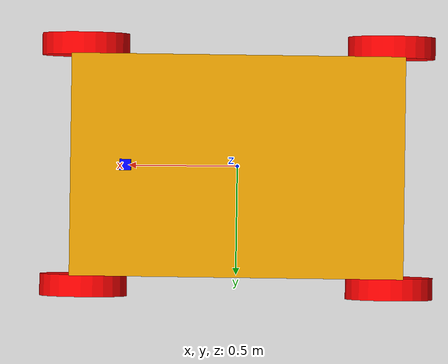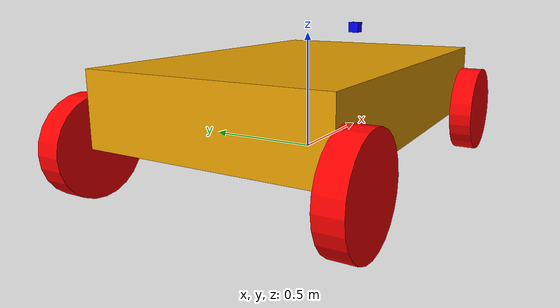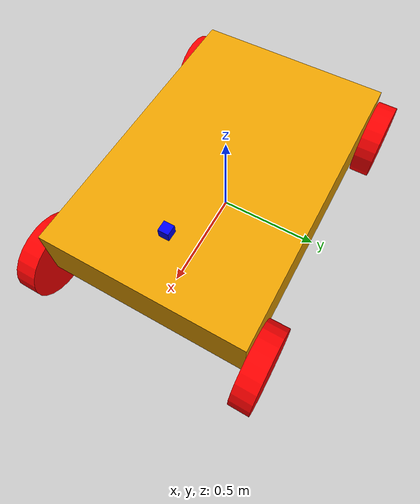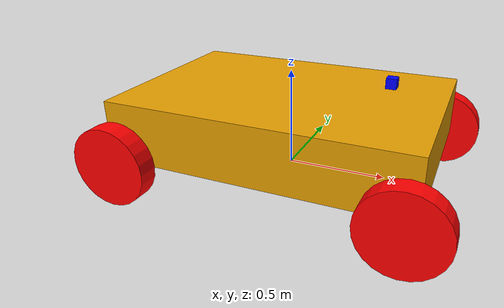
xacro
<?xml version="1.0"?>
<robot name="four_wheel_car" xmlns:xacro="http://www.ros.org/wiki/xacro">
<material name="Red">
  <color rgba="1 0 0 1"/>
</material>
<material name="Blue">
  <color rgba="0 0 1 1"/>
</material>
<material name="Green">
  <color rgba="0 1 0 1"/>
</material>

  <!-- Define properties for reusability -->
  <xacro:property name="wheel_radius" value="0.2"/>
  <xacro:property name="wheel_width" value="0.1"/>
  <xacro:property name="body_length" value="1.5"/>
  <xacro:property name="body_width" value="1.0"/>
  <xacro:property name="body_height" value="0.3"/>
  <xacro:property name="wheel_offset_x" value="0.7"/>
  <xacro:property name="wheel_offset_y" value="0.55"/>
  <xacro:property name="wheel_z" value="0.1"/>

  <!-- Base Link -->
  <link name="base_link">
    <inertial>
      <origin xyz="0 0 0" rpy="0 0 0"/>
      <mass value="5.0"/>
      <inertia ixx="0.1" ixy="0.0" ixz="0.0"
               iyy="0.1" iyz="0.0"
               izz="0.1"/>
    </inertial>
    <visual>
      <origin xyz="0 0 0.25" rpy="0 0 0"/>
      <geometry>
        <box size="${body_length} ${body_width} ${body_height}"/>
      </geometry>
    </visual>
    <collision>
      <origin xyz="0 0 0.15" rpy="0 0 0"/>
      <geometry>
        <box size="${body_length} ${body_width} ${body_height}"/>
      </geometry>
    </collision>
  </link>

  <!-- Define a wheel macro with orientation -->
  <xacro:macro name="wheel" params="name x y">
    <joint name="${name}_joint" type="continuous">
      <parent link="base_link"/>
      <child link="${name}_link"/>
      <origin xyz="${x} ${y} ${wheel_z}" rpy="0 0 0"/>
      <axis xyz="0 1 0"/>
    </joint>
    <link name="${name}_link">
      <inertial>
        <origin xyz="0 0 0" rpy="0 0 0"/>
        <mass value="1"/>
        <inertia ixx="10" ixy="0.0" ixz="0.0"
                 iyy="0.01" iyz="0.0"
                 izz="0.0"/>
      </inertial>
      <visual>
        <origin xyz="0 0 0" rpy="1.5708 0 0"/>
        <geometry>
          <cylinder length="${wheel_width}" radius="${wheel_radius}"/>
        </geometry>
        <material name="Red"/>
      </visual>
      <collision>
        <origin xyz="0 0 0.0" rpy="1.5708 0 0"/>
        <geometry>
          <cylinder length="${wheel_width}" radius="${wheel_radius}"/>
        </geometry>
        <material name="Green"/>
      </collision>
    </link>
  </xacro:macro>

  <!-- Create 4 wheels -->
  <xacro:wheel name="front_left_wheel" x="${wheel_offset_x}" y="${wheel_offset_y}"/>
  <xacro:wheel name="front_right_wheel" x="${wheel_offset_x}" y="-${wheel_offset_y}"/>
  <xacro:wheel name="rear_left_wheel" x="-${wheel_offset_x}" y="${wheel_offset_y}"/>
  <xacro:wheel name="rear_right_wheel" x="-${wheel_offset_x}" y="-${wheel_offset_y}"/>

  <!-- Transmission for ROS control -->
  <xacro:macro name="wheel_transmission" params="name">
    <transmission name="${name}_transmission">
      <type>transmission_interface/SimpleTransmission</type>
      <joint name="${name}_joint">
        <hardwareInterface>hardware_interface/VelocityJointInterface</hardwareInterface>
      </joint>
      <actuator name="${name}_motor">
        <hardwareInterface>hardware_interface/VelocityJointInterface</hardwareInterface>
      </actuator>
    </transmission>
  </xacro:macro>

  <!-- Add Transmissions -->
  <xacro:wheel_transmission name="front_left_wheel"/>
  <xacro:wheel_transmission name="front_right_wheel"/>
  <xacro:wheel_transmission name="rear_left_wheel"/>
  <xacro:wheel_transmission name="rear_right_wheel"/>

<!-- Add Mono Camera -->
<!-- Define a link for the camera -->
<link name="camera_link">
  <inertial>
    <origin xyz="0 0 0" rpy="0 0 0"/>
    <mass value="0.1"/>
    <inertia ixx="0.001" ixy="0.0" ixz="0.0"
             iyy="0.001" iyz="0.0"
             izz="0.001"/>
  </inertial>
  <visual>
    <origin xyz="0 0 0" rpy="0 0 0"/>
    <geometry>
      <box size="0.05 0.05 0.05"/>
    </geometry>
    <material name="Blue"/>
  </visual>
  <collision>
    <origin xyz="0 0 0" rpy="0 0 0"/>
    <geometry>
      <box size="0.05 0.05 0.05"/>
    </geometry>
  </collision>
</link>

<!-- Attach the camera to the robot using a fixed joint -->
<joint name="camera_joint" type="fixed">
  <parent link="base_link"/>
  <child link="camera_link"/>
  <!-- Adjust this origin to position the camera as desired on the car -->
  <origin xyz="0.5 0 0.5" rpy="0 0 0"/>
</joint>

<!-- Gazebo sensor plugin for the mono camera -->
<gazebo reference="camera_link">
  <sensor type="camera" name="mono_camera">
    <update_rate>30</update_rate>
    <always_on>true</always_on>
    <visualize>true</visualize>
    <camera>
      <!-- Set the horizontal FOV (in radians). For a 90° FOV, use about 1.5708 -->
      <horizontal_fov>1.5708</horizontal_fov>
      <image>
        <width>640</width>
        <height>480</height>
        <!-- Use L8 for an 8-bit grayscale image -->
        <format>L8</format>
      </image>
      <clip>
        <near>0.1</near>
        <far>100</far>
      </clip>
    </camera>
    <plugin name="gazebo_ros_camera" filename="libgazebo_ros_camera.so">
      <robotNamespace>/</robotNamespace>
      <cameraName>mono_camera</cameraName>
      <imageTopicName>mono_camera/image_raw</imageTopicName>
      <cameraInfoTopicName>mono_camera/camera_info</cameraInfoTopicName>
      <frameName>camera_link</frameName>
      <updateRate>30.0</updateRate>
    </plugin>
  </sensor>
</gazebo>

  <!-- Gazebo Plugin for ROS control -->
  <gazebo>
    <plugin name="gazebo_ros_control" filename="libgazebo_ros_control.so"/>
  </gazebo>

</robot>
